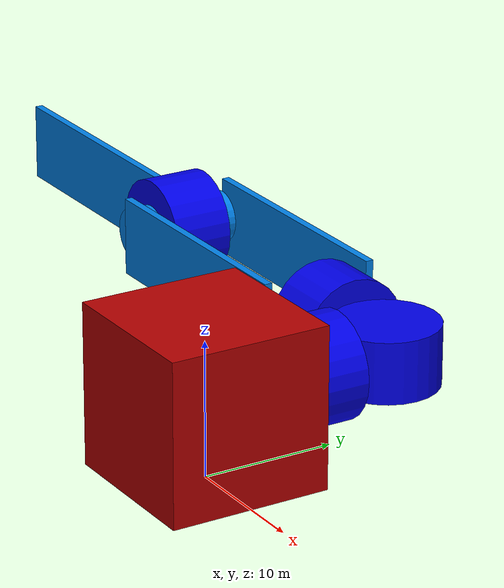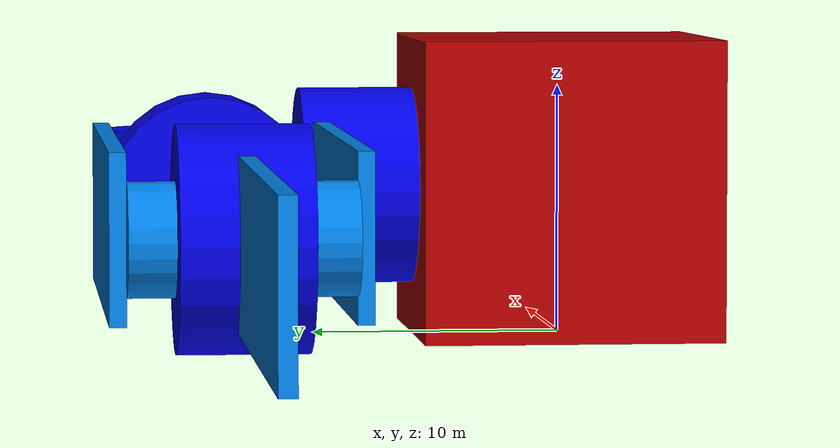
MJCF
<mujoco model="simple_example">

    <visual>
        <headlight ambient="0.5 0.5 0.5" />
    </visual>

    <asset>
        <material name="white" rgba="1 1 1 1" />
    </asset>

    <actuator>
        <motor gear="10000" joint="shoulder_pitch" name="shoulder_pitch" ctrlrange="-300 300" ctrllimited="true"/>
        <motor gear="10000" joint="shoulder_roll" name="shoulder_roll" ctrlrange="-300 300" ctrllimited="true"/>
        <motor gear="10000" joint="shoulder_yaw" name="shoulder_yaw" ctrlrange="-300 300" ctrllimited="true"/>
        <motor gear="10000" joint="elbow_pitch" name="elbow_pitch" ctrlrange="-300 300" ctrllimited="true"/>
    </actuator>
    <worldbody>

        <body pos="0 0 6" euler="0 0 0">
            <geom type="box" size="6 6 6" rgba=".7 0 0 1"/>

            <body pos="0 8.3 0" euler="90 0 0">
                <joint name="shoulder_pitch" type="hinge" axis="0 0 1" pos="0 0 0"/>
                <geom type="cylinder" size="3.96 2.3" rgba="0 0 .9 1" mass="65"/>
                <body pos="0 0 -6.26" euler="90 0 0">
                    <joint name="shoulder_roll" type="hinge" axis="0 0 1" pos="0 0 0"/>
                    <geom type="cylinder" size="3.96 2.3" rgba="0 0 .9 1" mass="65"/>

                    <body pos="-6.26 0 0" euler="0 90 0">
                        <joint name="shoulder_yaw" type="hinge" axis="0 0 1" pos="0 0 0"/>
                        <geom type="cylinder" size="3.96 2.3" rgba="0 0 .9 1" mass="65"/>

                        <body pos="0 4.26 -12.3" euler="90 0 90">

                            <geom type="box" size="10 3 .3" rgba="0 .5 .9 1" mass="20"/>
                        </body>

                        <body pos="0 -4.26 -12.3" euler="90 0 90">
                            <geom type="box" size="10 3 .3" rgba="0 .5 .9 1" mass="20"/>
                        </body>

                        <body pos="0 3.13 -22.3" euler="90 0 0">
                            <geom type="cylinder" size="2 .83" rgba="0 .5 .9 1"/>
                        </body>
                        <body pos="0 -3.13 -22.3" euler="90 0 0">
                            <geom type="cylinder" size="2 .83" rgba="0 .5 .9 1"/>
                        </body>

                        <body pos="0 0 -22.3" euler="90 0 0">
                            <joint name="elbow_pitch" type="hinge" axis="0 0 1" pos="0 0 0"/>

                            <geom type="cylinder" size="3.96 2.3" rgba="0 0 .9 1" mass="65"/>
                                <body pos="0 -12.3 0 " euler="0 0 90">
                                    <geom type="box" size="10 3 .3" rgba="0 .5 .9 1" mass="20"/>
                                </body>
                        </body>
                    </body>
                </body>

            </body>
        </body>

    </worldbody>

</mujoco>
